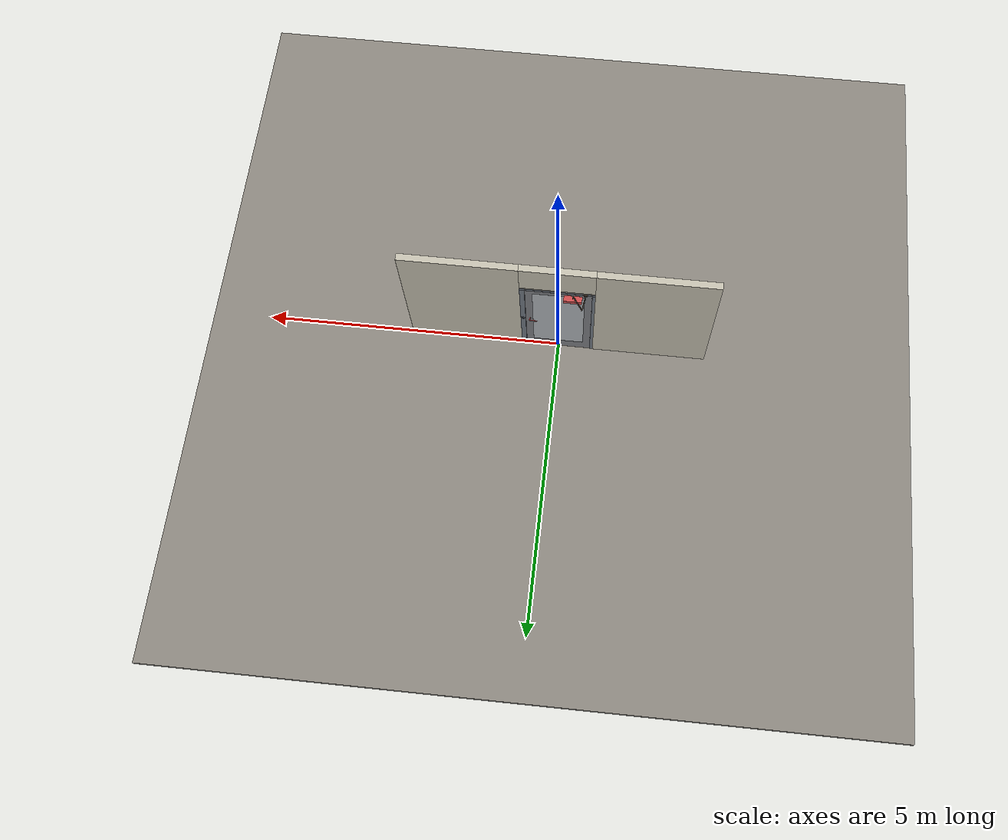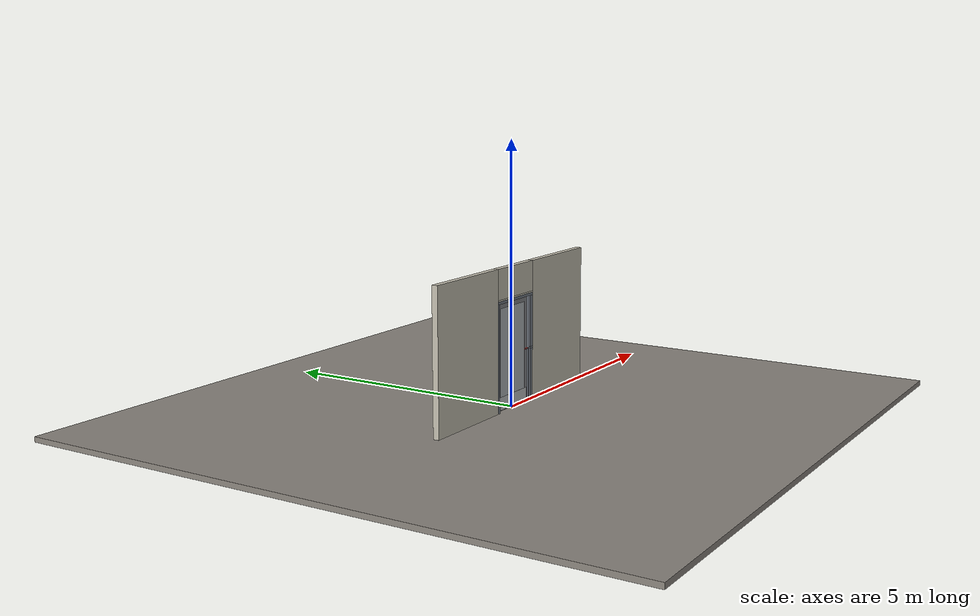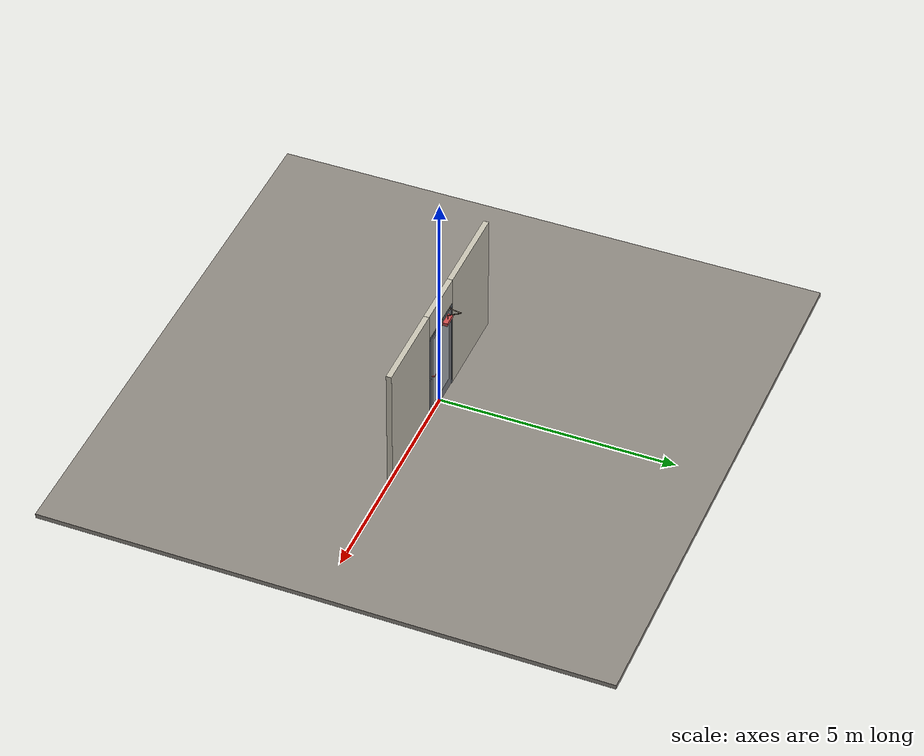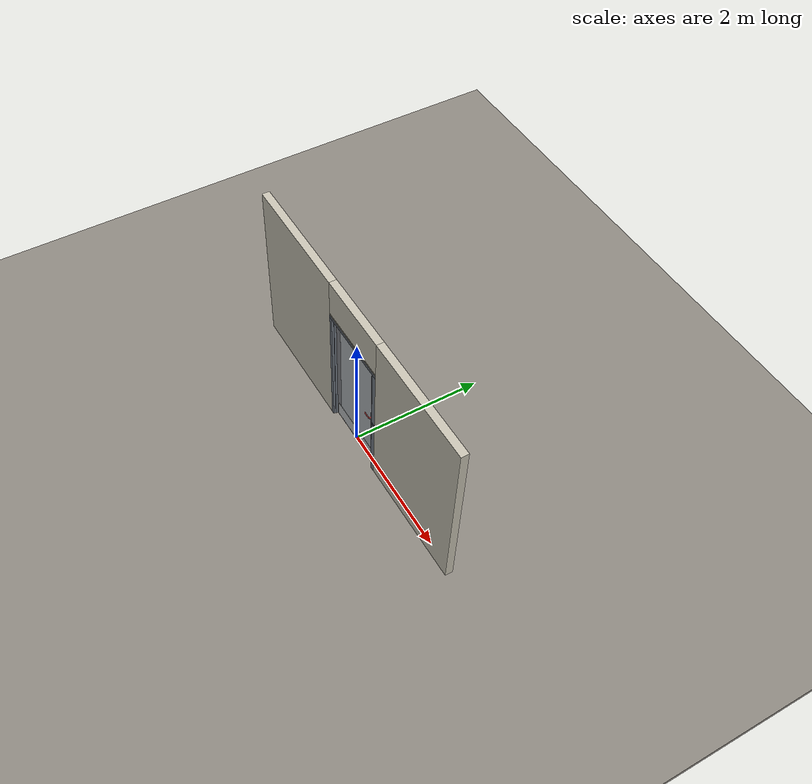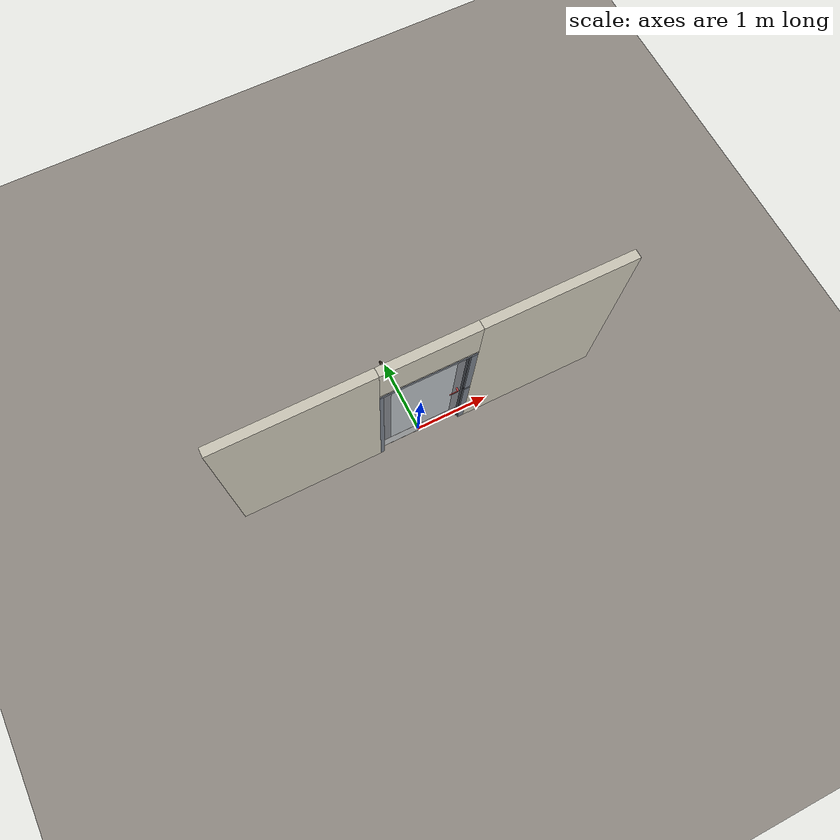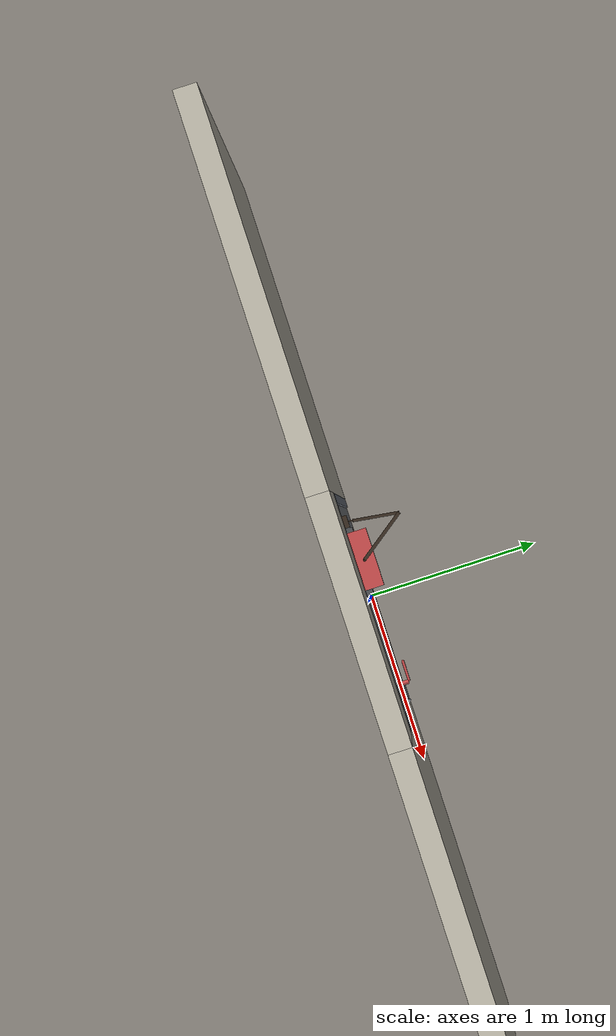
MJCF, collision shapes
<?xml version="1.0" ?>
<mujoco model="db0214_swing_single_full">
  <compiler angle="radian" meshdir="../../hardware" texturedir="../../textures" autolimits="true" inertiafromgeom="false"/>
  <option timestep="0.002" integrator="implicitfast" cone="elliptic" impratio="10" noslip_iterations="3">
    <flag multiccd="enable"/>
  </option>
  <size memory="16M"/>
  <default>
    <geom condim="4" solref="0.005 1" solimp="0.95 0.99 0.001"/>
    <joint solreflimit="0.005 1" solimplimit="0.95 0.99 0.001"/>
    <tendon solreflimit="0.005 1"/>
    <equality solref="0.002 1"/>
  </default>
  <visual>
    <headlight ambient="0.4 0.4 0.4" diffuse="0.7 0.7 0.7" specular="0.2 0.2 0.2"/>
    <quality shadowsize="4096"/>
    <map znear="0.01" zfar="60"/>
  </visual>
  <asset>
    <mesh name="closer_body_fdc4667657" file="closer_body_fdc4667657.obj"/>
    <mesh name="hinge_e22b26c0c1" file="hinge_e22b26c0c1.obj"/>
    <mesh name="hinge_jamb_e1d088f8dc" file="hinge_jamb_e1d088f8dc.obj"/>
    <mesh name="lever_57205841c3" file="lever_57205841c3.obj"/>
    <material name="mat_floor" rgba="0.55 0.53 0.5 1" specular="0.2" shininess="0.15" reflectance="0"/>
    <material name="mat_wall" rgba="0.78 0.76 0.7 1" specular="0.2" shininess="0.1" reflectance="0"/>
    <material name="mat_leaf" rgba="0.5 0.51 0.53 1" specular="0.2" shininess="0.49" reflectance="0"/>
    <material name="mat_glass" rgba="0.9 0.93 0.95 0.6" specular="0.2" shininess="0.5" reflectance="0.1"/>
    <material name="mat_hinge" rgba="0.65 0.66 0.68 1" specular="0.74" shininess="0.5" reflectance="0.36"/>
    <material name="mat_op_black_matte_metal" rgba="0.05 0.05 0.05 1" specular="0.38" shininess="0.3" reflectance="0.12"/>
    <material name="mat_trim" rgba="0.85 0.66 0.3 1" specular="0.8" shininess="0.75" reflectance="0.4"/>
    <material name="mat_bolt" rgba="0.75 0.76 0.77 1" specular="0.8" shininess="0.65" reflectance="0.4"/>
    <material name="mat_frame" rgba="0.45 0.48 0.52 1" specular="0.32" shininess="0.6" reflectance="0.08"/>
    <material name="mat_seal" rgba="0.1 0.1 0.1 1" specular="0.2" shininess="0.1" reflectance="0"/>
    <material name="mat_closer" rgba="0.22 0.17 0.13 1" specular="0.8" shininess="0.6" reflectance="0.4"/>
    <material name="mat_kick" rgba="0.75 0.76 0.77 1" specular="0.8" shininess="0.65" reflectance="0.4"/>
    <texture name="skybox" type="skybox" builtin="gradient" rgb1="0.6 0.7 0.85" rgb2="0.9 0.92 0.95" width="256" height="256"/>
  </asset>
  <worldbody>
    <light name="sun" pos="1.5 -2.5 4" dir="-0.3 0.5 -0.8" directional="true" diffuse="0.8 0.8 0.8" specular="0.3 0.3 0.3" castshadow="true"/>
    <light name="fill" pos="-1.5 2.5 3" dir="0.3 -0.5 -0.7" directional="true" diffuse="0.35 0.35 0.4" castshadow="false"/>
    <camera name="robot_view" pos="0 -2.570688 1.734312" xyaxes="1 0 0 0 0.26963 0.962964" fovy="52"/>
    <camera name="far_view" pos="0 2.513687 1.734312" xyaxes="-1 0 0 0 -0.26963 0.962964" fovy="52"/>
    <camera name="iso" pos="1.932062 -2.163938 2.141063" xyaxes="0.741536 0.670913 0 -0.242917 0.268487 0.932151" fovy="46"/>
    <camera name="detail_handle" pos="0.547 -0.877 1.32" xyaxes="0.97561 0.219512 0 -0.070934 0.315262 0.94635" fovy="38"/>
    <geom name="floor" type="box" size="6 6 0.05" pos="0 0 -0.05" material="mat_floor" group="0" contype="1" conaffinity="1" friction="0.8 0.005 0.0001" density="2400"/>
    <geom name="wall_left" type="box" size="0.9565 0.0575 1.35" pos="-1.5435 -0.0285 1.35" material="mat_wall" group="0" contype="1" conaffinity="1" friction="0.6 0.005 0.0001" density="800"/>
    <geom name="wall_right" type="box" size="0.9415 0.0575 1.35" pos="1.5585 -0.0285 1.35" material="mat_wall" group="0" contype="1" conaffinity="1" friction="0.6 0.005 0.0001" density="800"/>
    <geom name="wall_header" type="box" size="0.602 0.0575 0.2875" pos="0.015 -0.0285 2.4125" material="mat_wall" group="0" contype="1" conaffinity="1" friction="0.6 0.005 0.0001" density="800"/>
    <geom name="hinge_0_jamb" type="mesh" mesh="hinge_jamb_e1d088f8dc" pos="-0.534 0.029 0.259" quat="0 1 0 0" material="mat_hinge" group="1" contype="0" conaffinity="0" density="7850"/>
    <geom name="hinge_1_jamb" type="mesh" mesh="hinge_jamb_e1d088f8dc" pos="-0.534 0.029 1.025" quat="0 1 0 0" material="mat_hinge" group="1" contype="0" conaffinity="0" density="7850"/>
    <geom name="hinge_2_jamb" type="mesh" mesh="hinge_jamb_e1d088f8dc" pos="-0.534 0.029 1.861" quat="0 1 0 0" material="mat_hinge" group="1" contype="0" conaffinity="0" density="7850"/>
    <geom name="jamb_hinge" type="box" size="0.025 0.0575 1.0225" pos="-0.562 -0.0285 1.0225" material="mat_frame" group="0" contype="1" conaffinity="1" friction="0.6 0.005 0.0001" density="300"/>
    <geom name="strike_1040_wall_n" type="box" size="0.04 0.03825 0.018" pos="0.577 -0.04775 1.04" material="mat_frame" group="0" contype="1" conaffinity="1" friction="0.6 0.005 0.0001" density="300"/>
    <geom name="strike_1040_wall_p" type="box" size="0.04 0.008 0.018" pos="0.577 0.0175 1.04" material="mat_frame" group="0" contype="1" conaffinity="1" friction="0.6 0.005 0.0001" density="300"/>
    <geom name="strike_1040_ramp" type="box" size="0.04 0.018028 0.018" pos="0.580282 0.018312 1.04" quat="0.957092 0 0 -0.289784" material="mat_frame" group="0" contype="1" conaffinity="1" friction="0.12 0.005 0.0001" density="300"/>
    <geom name="strike_1040_back" type="box" size="0.0285 0.0095 0.018" pos="0.5885 0 1.04" material="mat_frame" group="0" contype="1" conaffinity="1" friction="0.6 0.005 0.0001" density="300"/>
    <geom name="jamb_strike_0" type="box" size="0.04 0.0575 0.511" pos="0.577 -0.0285 0.511" material="mat_frame" group="0" contype="1" conaffinity="1" friction="0.6 0.005 0.0001" density="300"/>
    <geom name="jamb_strike_1" type="box" size="0.04 0.0575 0.4935" pos="0.577 -0.0285 1.5515" material="mat_frame" group="0" contype="1" conaffinity="1" friction="0.6 0.005 0.0001" density="300"/>
    <geom name="jamb_head" type="box" size="0.602 0.0575 0.025" pos="0.015 -0.0285 2.07" material="mat_frame" group="0" contype="1" conaffinity="1" friction="0.6 0.005 0.0001" density="300"/>
    <geom name="head_stud" type="box" size="0.602 0.0575 0.015" pos="0.015 -0.0285 2.11" material="mat_wall" group="0" contype="1" conaffinity="1" friction="0.6 0.005 0.0001" density="500"/>
    <geom name="stop_hinge" type="box" size="0.0055 0.016 1.0225" pos="-0.5315 -0.0385 1.0225" material="mat_frame" group="0" contype="1" conaffinity="1" friction="0.6 0.005 0.0001" density="300"/>
    <geom name="stop_strike" type="box" size="0.0055 0.016 1.0225" pos="0.5315 -0.0385 1.0225" material="mat_frame" group="0" contype="1" conaffinity="1" friction="0.6 0.005 0.0001" density="300"/>
    <geom name="stop_head" type="box" size="0.537 0.016 0.0055" pos="0 -0.0385 2.0395" material="mat_frame" group="0" contype="1" conaffinity="1" friction="0.6 0.005 0.0001" density="300"/>
    <geom name="seal_hinge" type="box" size="0.004 0.002 1.0225" pos="-0.534 -0.024 1.0225" material="mat_seal" group="1" contype="0" conaffinity="0" density="1100"/>
    <geom name="seal_strike" type="box" size="0.004 0.002 1.0225" pos="0.534 -0.024 1.0225" material="mat_seal" group="1" contype="0" conaffinity="0" density="1100"/>
    <geom name="seal_head" type="box" size="0.517 0.002 0.008" pos="0 -0.024 2.033" material="mat_seal" group="1" contype="0" conaffinity="0" density="1100"/>
    <geom name="closer_bracket" type="box" size="0.03 0.012 0.014" pos="-0.437 0.041 2.075" material="mat_closer" group="1" contype="0" conaffinity="0" density="2700"/>
    <site name="approach_point" pos="0 -1.5 0" quat="1 0 0 0" size="0.05" rgba="0.2 0.9 0.2 0.5" group="4"/>
    <site name="goal_point" pos="0 1.5 0" quat="1 0 0 0" size="0.05" rgba="0.2 0.9 0.2 0.5" group="4"/>
    <site name="door_plane_center" pos="0 0 1.0225" quat="1 0 0 0" size="0.02" rgba="0.2 0.9 0.2 0.5" group="4"/>
    <body name="leaf" pos="-0.537 0 0">
      <inertial pos="0.438698 0.025356 1.300534" mass="48.872619" quat="-0.451033 0.482441 0.534243 0.52764" diaginertia="3.416525273 24.733039929 28.059933001"/>
      <joint name="leaf_hinge" type="hinge" axis="0 0 1" pos="0.003 0.029 0" limited="true" range="0 1.745329" solreflimit="0.02 1" damping="12.475663" frictionloss="0.712918" stiffness="16.170142" springref="-1.688297" armature="0.02"/>
      <geom name="leaf_slab" type="box" size="0.5335 0.022 1.016" pos="0.5365 0 1.025" material="mat_leaf" group="0" contype="1" conaffinity="1" friction="0.4 0.005 0.0001" density="1"/>
      <geom name="leaf_glass_0" type="box" size="0.41613 0.0228 0.85344" pos="0.5365 0 1.08596" material="mat_glass" group="1" contype="0" conaffinity="0" density="1"/>
      <geom name="hinge_0" type="mesh" mesh="hinge_e22b26c0c1" pos="0.003 0.029 0.259" quat="0 1 0 0" material="mat_hinge" group="1" contype="0" conaffinity="0" density="7850"/>
      <geom name="hinge_1" type="mesh" mesh="hinge_e22b26c0c1" pos="0.003 0.029 1.025" quat="0 1 0 0" material="mat_hinge" group="1" contype="0" conaffinity="0" density="7850"/>
      <geom name="hinge_2" type="mesh" mesh="hinge_e22b26c0c1" pos="0.003 0.029 1.861" quat="0 1 0 0" material="mat_hinge" group="1" contype="0" conaffinity="0" density="7850"/>
      <geom name="leaf_latch_bolt_faceplate" type="box" size="0.0006 0.014 0.028" pos="1.0694 0 1.04" material="mat_bolt" group="1" contype="0" conaffinity="0" density="8500"/>
      <geom name="closer_body" type="mesh" mesh="closer_body_fdc4667657" pos="0.3 0.022 1.952" quat="-0.707107 0.707107 0 0" material="mat_closer" group="1" contype="0" conaffinity="0" density="2000"/>
      <geom name="closer_body_col" type="box" size="0.145 0.05 0.035" pos="0.3 0.072 1.952" material="mat_closer" group="3" contype="1" conaffinity="1" rgba="0.8 0.3 0.3 0.25" friction="0.6 0.005 0.0001" density="2000"/>
      <geom name="closer_pinion_shaft" type="cylinder" size="0.008 0.0615" pos="0.3 0.072 2.0135" material="mat_closer" group="1" contype="0" conaffinity="0" density="2700"/>
      <geom name="kick_plate_n" type="box" size="0.5035 0.0008 0.125" pos="0.5365 -0.0228 0.144" material="mat_kick" group="2" contype="0" conaffinity="0" density="7900"/>
      <site name="leaf_edge_mid" pos="1.07 0 1.016" quat="1 0 0 0" size="0.02" rgba="0.2 0.9 0.2 0.5" group="4"/>
      <body name="leaf_handle" pos="1 0 1.04">
        <inertial pos="-0.018425 0 0" mass="0.806444" quat="0 0.707107 0.707107 0" diaginertia="0.001006485 0.002593405 0.00349528"/>
        <joint name="leaf_handle_hinge" type="hinge" axis="0 -1 0" limited="true" range="0 0.87" damping="0.212417" frictionloss="0.042" stiffness="1" springref="-0.35" armature="0.01"/>
        <geom name="leaf_handle_spindle" type="cylinder" size="0.006 0.03" pos="0 0 0" quat="0.707107 -0.707107 0 0" material="mat_op_black_matte_metal" group="1" contype="0" conaffinity="0" density="7850"/>
        <geom name="leaf_handle_lever_n" type="mesh" mesh="lever_57205841c3" pos="0 -0.022 0" quat="0.707107 0.707107 0 0" material="mat_op_black_matte_metal" group="1" contype="0" conaffinity="0" density="3000"/>
        <geom name="leaf_handle_lever_col_n" type="capsule" size="0.007 0.053" pos="-0.06 -0.077 0" quat="0.707107 0 -0.707107 0" material="mat_op_black_matte_metal" group="3" contype="1" conaffinity="1" rgba="0.8 0.3 0.3 0.25" friction="0.7 0.01 0.0001" density="3000"/>
        <geom name="leaf_handle_hub_col_n" type="cylinder" size="0.012 0.022" pos="0 -0.052 0" quat="0.707107 -0.707107 0 0" material="mat_op_black_matte_metal" group="3" contype="1" conaffinity="1" rgba="0.8 0.3 0.3 0.25" friction="0.6 0.005 0.0001" density="3000"/>
        <geom name="leaf_handle_lever_p" type="mesh" mesh="lever_57205841c3" pos="0 0.022 0" quat="-0.707107 0.707107 0 0" material="mat_op_black_matte_metal" group="1" contype="0" conaffinity="0" density="3000"/>
        <geom name="leaf_handle_lever_col_p" type="capsule" size="0.007 0.053" pos="-0.06 0.077 0" quat="0.707107 0 -0.707107 0" material="mat_op_black_matte_metal" group="3" contype="1" conaffinity="1" rgba="0.8 0.3 0.3 0.25" friction="0.7 0.01 0.0001" density="3000"/>
        <geom name="leaf_handle_hub_col_p" type="cylinder" size="0.012 0.022" pos="0 0.052 0" quat="0.707107 -0.707107 0 0" material="mat_op_black_matte_metal" group="3" contype="1" conaffinity="1" rgba="0.8 0.3 0.3 0.25" friction="0.6 0.005 0.0001" density="3000"/>
        <site name="leaf_handle_grip_n" pos="-0.096 -0.077 0" quat="1 0 0 0" size="0.012" rgba="0.2 0.9 0.2 0.5" group="4"/>
        <site name="leaf_handle_grip_p" pos="-0.096 0.077 0" quat="1 0 0 0" size="0.012" rgba="0.2 0.9 0.2 0.5" group="4"/>
      </body>
      <body name="leaf_latch_bolt" pos="1.07 0 1.04">
        <inertial pos="-0.0055 0 0" mass="0.074627" quat="0.92388 -0.382683 0 0" diaginertia="0.000002271 0.000013255 0.000013255"/>
        <joint name="leaf_latch_bolt_slide" type="slide" axis="-1 0 0" limited="true" range="0 0.019" damping="2" frictionloss="0.3" stiffness="550" springref="-0.01" armature="0.1"/>
        <geom name="leaf_latch_bolt_capsule" type="capsule" size="0.008 0.0165" pos="-0.0055 0 0" quat="0.707107 0 0.707107 0" material="mat_bolt" group="0" contype="1" conaffinity="1" friction="0.2 0.005 0.0001" density="8500"/>
      </body>
      <body name="closer_arm_main" pos="0.3 0.072 2.075" quat="0.454107 0 0 0.890947">
        <inertial pos="0.14 0 0" mass="0.12096" quat="1 0 0 0" diaginertia="0.000003588 0.00079128 0.000792852"/>
        <joint name="closer_pinion" type="hinge" axis="0 0 1" limited="false" damping="0.01" armature="0.002"/>
        <geom name="closer_arm_main_geom" type="box" size="0.14 0.008 0.005" pos="0.14 0 0" material="mat_closer" group="1" contype="0" conaffinity="0" density="2700"/>
        <body name="closer_arm_fore" pos="0.28 0 0" quat="-0.373215 0 0 -0.927745">
          <inertial pos="0.128088 0 0" mass="0.076531" quat="1 0 0 0" diaginertia="0.000001771 0.000437665 0.000438201"/>
          <joint name="closer_elbow" type="hinge" axis="0 0 1" limited="false" damping="0.01" armature="0.002"/>
          <geom name="closer_arm_fore_geom" type="box" size="0.1125 0.007 0.004" pos="0.1125 0 0" material="mat_closer" group="1" contype="0" conaffinity="0" density="2700"/>
          <geom name="closer_fore_neck" type="box" size="0.0175 0.003 0.003" pos="0.2425 0 0" material="mat_closer" group="1" contype="0" conaffinity="0" density="2700"/>
          <geom name="closer_fore_pivot" type="cylinder" size="0.005 0.012" pos="0.26 0 0" material="mat_closer" group="1" contype="0" conaffinity="0" density="2700"/>
        </body>
      </body>
    </body>
  </worldbody>
  <tendon>
    <fixed name="leaf_latch_bolt_coupling" limited="true" range="0 10">
      <joint joint="leaf_latch_bolt_slide" coef="1"/>
      <joint joint="leaf_handle_hinge" coef="-0.023457"/>
    </fixed>
  </tendon>
  <equality>
    <connect name="closer_arm_connect" body1="closer_arm_fore" body2="world" anchor="0.26 0 0" active="true"/>
  </equality>
  <contact>
    <exclude body1="closer_arm_main" body2="leaf"/>
    <exclude body1="closer_arm_fore" body2="leaf"/>
    <exclude body1="closer_arm_main" body2="closer_arm_fore"/>
  </contact>
  <sensor>
    <jointpos name="leaf_hinge_pos" joint="leaf_hinge"/>
    <jointvel name="leaf_hinge_vel" joint="leaf_hinge"/>
    <jointpos name="leaf_handle_hinge_pos" joint="leaf_handle_hinge"/>
    <jointvel name="leaf_handle_hinge_vel" joint="leaf_handle_hinge"/>
    <jointpos name="leaf_latch_bolt_slide_pos" joint="leaf_latch_bolt_slide"/>
    <jointvel name="leaf_latch_bolt_slide_vel" joint="leaf_latch_bolt_slide"/>
  </sensor>
</mujoco>
